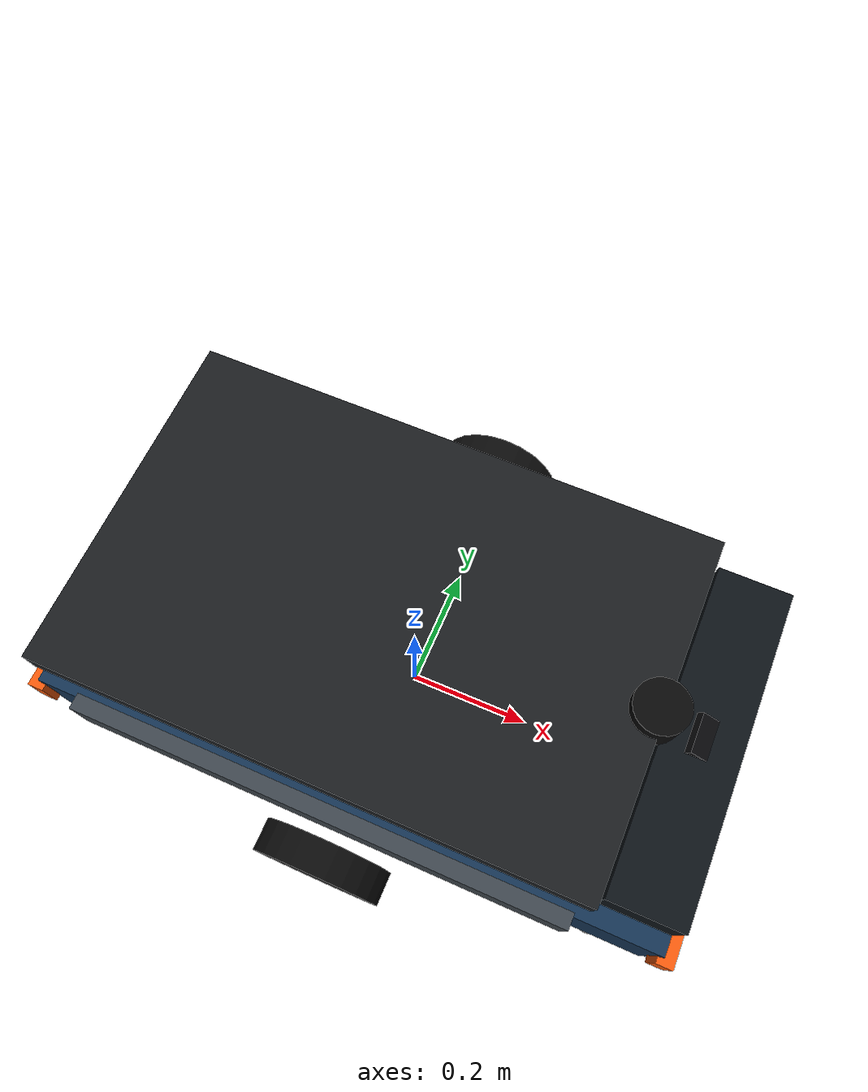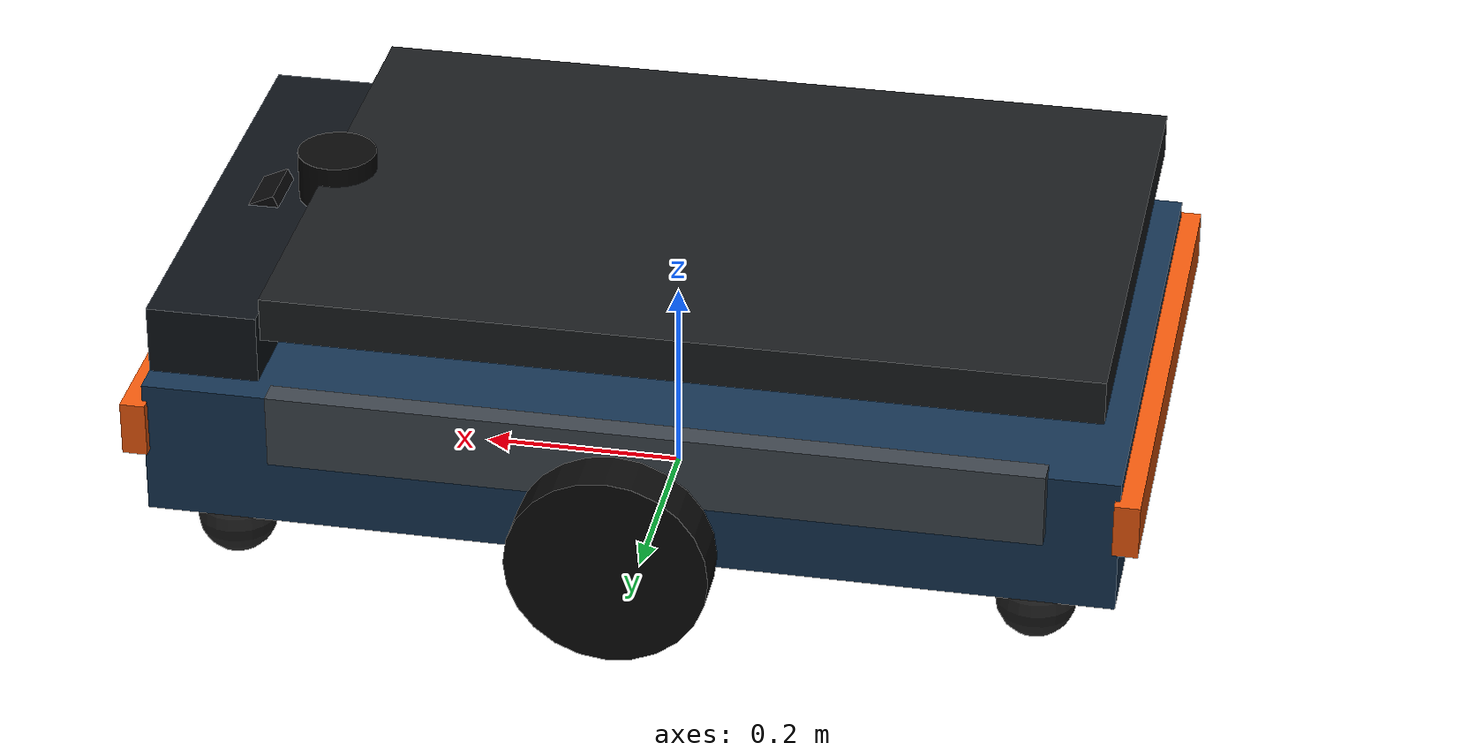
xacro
<?xml version="1.0"?>

<robot name="warehouse_amr"
       xmlns:xacro="http://www.ros.org/wiki/xacro">

    <xacro:include filename="amr_properties.xacro"/>

    <!-- Coordinate convention                                     -->
    <!-- x = forward, y = left, z = up                             -->

    <xacro:arg name="use_sim" default="false"/>
    <xacro:arg name="controllers_file" default=""/>

    <!-- BASE FOOTPRINT                                            -->

    <link name="base_footprint"/>

    <!-- MAIN CHASSIS                                              -->
    <!-- IMPORTANT:                                                -->
    <!-- The collision and inertial model intentionally remain     -->
    <!-- equivalent to the previous V0 chassis so the working      -->
    <!-- navigation / drivetrain baseline is not changed by this   -->
    <!-- visual redesign.                                          -->

    <link name="base_link">

        <!-- Lower equipment enclosure -->
        <visual>
            <origin xyz="0 0 ${lower_body_z}" rpy="0 0 0"/>
            <geometry>
                <box size="${lower_body_length} ${lower_body_width} ${lower_body_height}"/>
            </geometry>
            <material name="body_blue">
                <color rgba="0.08 0.20 0.32 1.0"/>
            </material>
        </visual>

        <!-- Raised payload deck -->
        <visual>
            <origin xyz="${deck_x} 0 ${deck_z}" rpy="0 0 0"/>
            <geometry>
                <box size="${deck_length} ${deck_width} ${deck_height}"/>
            </geometry>
            <material name="deck_dark">
                <color rgba="0.10 0.11 0.12 1.0"/>
            </material>
        </visual>

        <!-- Front sensor nose -->
        <visual>
            <origin xyz="${sensor_nose_x} 0 ${sensor_nose_z}" rpy="0 0 0"/>
            <geometry>
                <box size="${sensor_nose_length} ${sensor_nose_width} ${sensor_nose_height}"/>
            </geometry>
            <material name="sensor_nose_dark">
                <color rgba="0.05 0.07 0.09 1.0"/>
            </material>
        </visual>

        <!-- Left side protection rail / fairing -->
        <visual>
            <origin xyz="-0.03 ${side_rail_y} ${side_rail_z}" rpy="0 0 0"/>
            <geometry>
                <box size="${side_rail_length} ${side_rail_width} ${side_rail_height}"/>
            </geometry>
            <material name="side_rail_gray">
                <color rgba="0.24 0.27 0.30 1.0"/>
            </material>
        </visual>

        <!-- Right side protection rail / fairing -->
        <visual>
            <origin xyz="-0.03 ${-side_rail_y} ${side_rail_z}" rpy="0 0 0"/>
            <geometry>
                <box size="${side_rail_length} ${side_rail_width} ${side_rail_height}"/>
            </geometry>
            <material name="side_rail_gray"/>
        </visual>

        <!-- Front safety bumper -->
        <visual>
            <origin xyz="${front_bumper_x} 0 ${bumper_z}" rpy="0 0 0"/>
            <geometry>
                <box size="${bumper_length} ${bumper_width} ${bumper_height}"/>
            </geometry>
            <material name="safety_orange">
                <color rgba="0.95 0.35 0.05 1.0"/>
            </material>
        </visual>

        <!-- Rear safety bumper -->
        <visual>
            <origin xyz="${-front_bumper_x} 0 ${bumper_z}" rpy="0 0 0"/>
            <geometry>
                <box size="${bumper_length} ${bumper_width} ${bumper_height}"/>
            </geometry>
            <material name="safety_orange"/>
        </visual>

        <!-- Existing conservative collision envelope -->
        <collision>
            <geometry>
                <box size="${base_length} ${base_width} ${base_height}"/>
            </geometry>
        </collision>

        <inertial>
            <mass value="${base_mass}"/>

            <!-- Temporary box inertia approximation retained from V0 -->
            <inertia
                ixx="${base_mass * (base_width*base_width + base_height*base_height) / 12.0}"
                iyy="${base_mass * (base_length*base_length + base_height*base_height) / 12.0}"
                izz="${base_mass * (base_length*base_length + base_width*base_width) / 12.0}"
                ixy="0.0"
                ixz="0.0"
                iyz="0.0"/>
        </inertial>

    </link>

    <joint name="base_footprint_joint" type="fixed">

        <parent link="base_footprint"/>
        <child link="base_link"/>

        <origin
            xyz="0 0 ${ground_clearance + base_height/2.0}"
            rpy="0 0 0"/>

    </joint>

    <!-- LEFT DRIVE WHEEL                                         -->

    <link name="left_wheel_link">

        <visual>
            <origin rpy="${pi/2} 0 0"/>
            <geometry>
                <cylinder radius="${wheel_radius}" length="${wheel_width}"/>
            </geometry>
            <material name="wheel_black">
                <color rgba="0.04 0.04 0.04 1.0"/>
            </material>
        </visual>

        <collision>
            <origin rpy="${pi/2} 0 0"/>
            <geometry>
                <cylinder radius="${wheel_radius}" length="${wheel_width}"/>
            </geometry>
        </collision>

        <inertial>
            <mass value="${wheel_mass}"/>
            <inertia
                ixx="${wheel_mass * (3.0*wheel_radius*wheel_radius + wheel_width*wheel_width) / 12.0}"
                iyy="${wheel_mass * wheel_radius*wheel_radius / 2.0}"
                izz="${wheel_mass * (3.0*wheel_radius*wheel_radius + wheel_width*wheel_width) / 12.0}"
                ixy="0.0"
                ixz="0.0"
                iyz="0.0"/>
        </inertial>

    </link>

    <joint name="left_wheel_joint" type="continuous">

        <parent link="base_link"/>
        <child link="left_wheel_link"/>

        <origin
            xyz="0 ${wheel_separation/2.0} ${wheel_radius - (ground_clearance + base_height/2.0)}"
            rpy="0 0 0"/>

        <axis xyz="0 1 0"/>

    </joint>

    <!-- RIGHT DRIVE WHEEL                                        -->

    <link name="right_wheel_link">

        <visual>
            <origin rpy="${pi/2} 0 0"/>
            <geometry>
                <cylinder radius="${wheel_radius}" length="${wheel_width}"/>
            </geometry>
            <material name="wheel_black"/>
        </visual>

        <collision>
            <origin rpy="${pi/2} 0 0"/>
            <geometry>
                <cylinder radius="${wheel_radius}" length="${wheel_width}"/>
            </geometry>
        </collision>

        <inertial>
            <mass value="${wheel_mass}"/>
            <inertia
                ixx="${wheel_mass * (3.0*wheel_radius*wheel_radius + wheel_width*wheel_width) / 12.0}"
                iyy="${wheel_mass * wheel_radius*wheel_radius / 2.0}"
                izz="${wheel_mass * (3.0*wheel_radius*wheel_radius + wheel_width*wheel_width) / 12.0}"
                ixy="0.0"
                ixz="0.0"
                iyz="0.0"/>
        </inertial>

    </link>

    <joint name="right_wheel_joint" type="continuous">

        <parent link="base_link"/>
        <child link="right_wheel_link"/>

        <origin
            xyz="0 ${-wheel_separation/2.0} ${wheel_radius - (ground_clearance + base_height/2.0)}"
            rpy="0 0 0"/>

        <axis xyz="0 1 0"/>

    </joint>

    <!-- PASSIVE SUPPORT WHEELS                                   -->

    <xacro:macro name="support_wheel" params="name x y">

        <link name="${name}_link">

            <visual>
                <geometry>
                    <sphere radius="${caster_radius}"/>
                </geometry>
                <material name="caster_dark">
                    <color rgba="0.12 0.12 0.12 1.0"/>
                </material>
            </visual>

            <collision>
                <geometry>
                    <sphere radius="${caster_radius}"/>
                </geometry>
            </collision>

            <inertial>
                <mass value="${caster_mass}"/>
                <inertia
                    ixx="${2.0/5.0 * caster_mass * caster_radius*caster_radius}"
                    iyy="${2.0/5.0 * caster_mass * caster_radius*caster_radius}"
                    izz="${2.0/5.0 * caster_mass * caster_radius*caster_radius}"
                    ixy="0.0"
                    ixz="0.0"
                    iyz="0.0"/>
            </inertial>

        </link>

        <joint name="${name}_joint" type="fixed">

            <parent link="base_link"/>
            <child link="${name}_link"/>

            <origin
                xyz="${x} ${y} ${caster_radius - (ground_clearance + base_height/2.0)}"
                rpy="0 0 0"/>

        </joint>

    </xacro:macro>

    <xacro:support_wheel
        name="front_left_support"
        x="${caster_x}"
        y="${caster_y}"/>

    <xacro:support_wheel
        name="front_right_support"
        x="${caster_x}"
        y="${-caster_y}"/>

    <xacro:support_wheel
        name="rear_left_support"
        x="${-caster_x}"
        y="${caster_y}"/>

    <xacro:support_wheel
        name="rear_right_support"
        x="${-caster_x}"
        y="${-caster_y}"/>

    <!-- Simplified low-friction support contacts retained from V0 -->

    <gazebo reference="front_left_support_link">
        <mu1>0.01</mu1>
        <mu2>0.01</mu2>
    </gazebo>

    <gazebo reference="front_right_support_link">
        <mu1>0.01</mu1>
        <mu2>0.01</mu2>
    </gazebo>

    <gazebo reference="rear_left_support_link">
        <mu1>0.01</mu1>
        <mu2>0.01</mu2>
    </gazebo>

    <gazebo reference="rear_right_support_link">
        <mu1>0.01</mu1>
        <mu2>0.01</mu2>
    </gazebo>

    <!-- IMU FRAME                                                -->

    <link name="imu_link"/>

    <joint name="imu_joint" type="fixed">
        <parent link="base_link"/>
        <child link="imu_link"/>
        <origin xyz="0 0 0.05" rpy="0 0 0"/>
    </joint>

    <!-- LIDAR + PEDESTAL                                         -->
    <!-- TF location is intentionally unchanged from V0.           -->

    <link name="lidar_link">

        <!-- Pedestal -->
        <visual>
            <origin xyz="0 0 -0.065" rpy="0 0 0"/>
            <geometry>
                <cylinder radius="0.025" length="0.08"/>
            </geometry>
            <material name="lidar_pedestal">
                <color rgba="0.18 0.20 0.22 1.0"/>
            </material>
        </visual>

        <!-- LiDAR puck -->
        <visual>
            <geometry>
                <cylinder radius="0.040" length="0.05"/>
            </geometry>
            <material name="lidar_dark">
                <color rgba="0.03 0.03 0.03 1.0"/>
            </material>
        </visual>

    </link>

    <joint name="lidar_joint" type="fixed">
        <parent link="base_link"/>
        <child link="lidar_link"/>

        <!-- Existing verified transform retained -->
        <origin
            xyz="0.35 0 ${base_height/2.0 + 0.04}"
            rpy="0 0 0"/>
    </joint>

    <!-- DOCKING CAMERA                                           -->
    <!-- Reference hardware envelope:                              -->
    <!-- Raspberry Pi Global Shutter Camera (IMX296) + C/CS lens. -->
    <!-- Optical center is ~0.24 m above the floor and the camera  -->
    <!-- is pitched 25 degrees downward for floor fiducials.       -->

    <link name="camera_mount_link">

        <!-- Protective camera housing -->
        <visual>
            <geometry>
                <box size="${camera_housing_length} ${camera_housing_width} ${camera_housing_height}"/>
            </geometry>
            <material name="camera_housing_black">
                <color rgba="0.035 0.035 0.04 1.0"/>
            </material>
        </visual>

        <!-- Front lens barrel, approximate only -->
        <visual>
            <origin xyz="${camera_housing_length/2.0 + 0.012} 0 0" rpy="0 ${pi/2.0} 0"/>
            <geometry>
                <cylinder radius="0.018" length="0.024"/>
            </geometry>
            <material name="camera_lens">
                <color rgba="0.02 0.02 0.025 1.0"/>
            </material>
        </visual>

    </link>

    <joint name="camera_mount_joint" type="fixed">

        <parent link="base_link"/>
        <child link="camera_mount_link"/>

        <origin
            xyz="${camera_x} ${camera_y} ${camera_z}"
            rpy="0 ${camera_pitch} 0"/>

    </joint>

    <!-- Conventional robot camera frame: x forward, y left, z up -->
    <link name="camera_link"/>

    <joint name="camera_joint" type="fixed">

        <parent link="camera_mount_link"/>
        <child link="camera_link"/>

        <!-- Approximate optical center near the front of the housing -->
        <origin
            xyz="${camera_housing_length/2.0} 0 0"
            rpy="0 0 0"/>

    </joint>

    <!-- REP-103 optical frame: x right, y down, z forward -->
    <link name="camera_optical_frame"/>

    <joint name="camera_optical_joint" type="fixed">

        <parent link="camera_link"/>
        <child link="camera_optical_frame"/>

        <origin
            xyz="0 0 0"
            rpy="${-pi/2.0} 0 ${-pi/2.0}"/>

    </joint>

    <!-- SIMULATION-ONLY COMPONENTS                               -->

    <xacro:if value="$(arg use_sim)">

        <!-- ros2_control Gazebo hardware                         -->

        <ros2_control name="GazeboSimSystem" type="system">

            <hardware>
                <plugin>gz_ros2_control/GazeboSimSystem</plugin>
            </hardware>

            <joint name="left_wheel_joint">

                <command_interface name="velocity">
                    <param name="min">-12.0</param>
                    <param name="max">12.0</param>
                </command_interface>

                <state_interface name="position"/>
                <state_interface name="velocity"/>

            </joint>

            <joint name="right_wheel_joint">

                <command_interface name="velocity">
                    <param name="min">-12.0</param>
                    <param name="max">12.0</param>
                </command_interface>

                <state_interface name="position"/>
                <state_interface name="velocity"/>

            </joint>

        </ros2_control>

        <!-- gz_ros2_control plugin                               -->

        <gazebo>

            <plugin
                filename="libgz_ros2_control-system.so"
                name="gz_ros2_control::GazeboSimROS2ControlPlugin">

                <parameters>$(arg controllers_file)</parameters>

            </plugin>

        </gazebo>

        <!-- IMU                                                  -->

        <gazebo reference="imu_link">

            <sensor name="imu_sensor" type="imu">

                <always_on>true</always_on>
                <update_rate>100</update_rate>

                <topic>/imu/data_raw</topic>
                <gz_frame_id>imu_link</gz_frame_id>

            </sensor>

        </gazebo>

        <!-- 2D GPU LIDAR                                         -->

        <gazebo reference="lidar_link">

            <sensor name="lidar_sensor" type="gpu_lidar">

                <always_on>true</always_on>
                <visualize>true</visualize>
                <update_rate>10</update_rate>

                <topic>/scan</topic>
                <gz_frame_id>lidar_link</gz_frame_id>

                <lidar>

                    <scan>
                        <horizontal>

                            <samples>720</samples>
                            <resolution>1</resolution>

                            <min_angle>-3.14159265</min_angle>
                            <max_angle>3.14159265</max_angle>

                        </horizontal>
                    </scan>

                    <range>
                        <min>0.05</min>
                        <max>20.0</max>
                        <resolution>0.01</resolution>
                    </range>

                </lidar>

            </sensor>

        </gazebo>

        <!-- DOCKING CAMERA                                       -->
        <!-- Approximate Raspberry Pi Global Shutter Camera       -->
        <!-- geometry with provisional 6 mm lens (~45.4 deg HFOV).-->
        <!-- A ros_gz_bridge image + camera_info bridge will be   -->
        <!-- added when AprilTag simulation is introduced.        -->

        <gazebo reference="camera_link">

            <sensor name="docking_camera_sensor" type="camera">

                <always_on>false</always_on>
                <visualize>false</visualize>
                <update_rate>10</update_rate>

                <topic>/camera/image_raw</topic>

                <gz_frame_id>camera_optical_frame</gz_frame_id>

                <camera>
                    <horizontal_fov>0.7924</horizontal_fov>

                    <camera_info_topic>/camera/camera_info</camera_info_topic>

                    <image>
                        <width>640</width>
                        <height>480</height>
                        <format>R8G8B8</format>
                    </image>

                    <clip>
                        <near>0.05</near>
                        <far>8.0</far>
                    </clip>
                </camera>

            </sensor>

        </gazebo>

    </xacro:if>

</robot>

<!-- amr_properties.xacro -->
<robot xmlns:xacro="http://www.ros.org/wiki/xacro">

    <!-- AMR V1.1 PARAMETERS                                      -->
    <!-- The drive geometry / mass values are intentionally kept   -->
    <!-- from the working V0 model. New values below primarily     -->
    <!-- define the upgraded visual body and docking-camera bay.    -->
    <!-- All dimensions are SI units: m, kg.                       -->

    <!-- EXISTING VEHICLE ENVELOPE / DYNAMICS                      -->

    <xacro:property name="base_length" value="1.00"/>
    <xacro:property name="base_width"  value="0.60"/>
    <xacro:property name="base_height" value="0.20"/>

    <!-- Approximate base mass, without payload -->
    <xacro:property name="base_mass" value="50.0"/>

    <!-- Ground clearance under the chassis -->
    <xacro:property name="ground_clearance" value="0.06"/>

    <!-- Drive wheels -->
    <xacro:property name="wheel_radius"     value="0.10"/>
    <xacro:property name="wheel_width"     value="0.05"/>
    <xacro:property name="wheel_clearance" value="0.02"/>

    <!-- Distance between left and right wheel centerlines -->
    <xacro:property
        name="wheel_separation"
        value="${base_width + wheel_width + 2.0*wheel_clearance}"/>

    <!-- Passive support wheels / caster placeholders -->
    <xacro:property name="caster_radius" value="0.04"/>
    <xacro:property name="caster_x" value="0.40"/>
    <xacro:property name="caster_y" value="0.24"/>

    <xacro:property name="wheel_mass" value="2.0"/>
    <xacro:property name="caster_mass" value="0.5"/>

    <!-- V1.1 INDUSTRIAL BODY VISUALS                              -->

    <!-- Lower equipment enclosure -->
    <xacro:property name="lower_body_length" value="0.96"/>
    <xacro:property name="lower_body_width"  value="0.56"/>
    <xacro:property name="lower_body_height" value="0.14"/>

    <!-- base_link origin is ~0.16 m above floor.
         This places the lower enclosure bottom near the existing
         0.06 m ground clearance. -->
    <xacro:property name="lower_body_z" value="-0.03"/>

    <!-- Payload deck -->
    <xacro:property name="deck_length" value="0.82"/>
    <xacro:property name="deck_width"  value="0.54"/>
    <xacro:property name="deck_height" value="0.045"/>

    <!-- Deck shifted rearward to preserve front sensor zone -->
    <xacro:property name="deck_x" value="-0.05"/>

    <!-- Existing chassis top is at ~0.26 m above floor.
         Deck spans approximately 0.26 -> 0.305 m. -->
    <xacro:property name="deck_z" value="0.1225"/>

    <!-- Front sensor nose -->
    <xacro:property name="sensor_nose_length" value="0.11"/>
    <xacro:property name="sensor_nose_width"  value="0.50"/>
    <xacro:property name="sensor_nose_height" value="0.08"/>
    <xacro:property name="sensor_nose_x" value="0.425"/>
    <xacro:property name="sensor_nose_z" value="0.07"/>

    <!-- Side protection fairings -->
    <xacro:property name="side_rail_length" value="0.76"/>
    <xacro:property name="side_rail_width"  value="0.025"/>
    <xacro:property name="side_rail_height" value="0.075"/>
    <xacro:property name="side_rail_y" value="0.2875"/>
    <xacro:property name="side_rail_z" value="0.015"/>

    <!-- Front/rear bumper visuals -->
    <xacro:property name="bumper_length" value="0.025"/>
    <xacro:property name="bumper_width"  value="0.58"/>
    <xacro:property name="bumper_height" value="0.055"/>
    <xacro:property name="front_bumper_x" value="0.4875"/>
    <xacro:property name="bumper_z" value="-0.005"/>

    <!-- DOCKING CAMERA ENVELOPE                                  -->
    <!-- Reference: Raspberry Pi Global Shutter Camera + lens.     -->
    <!-- Housing is intentionally larger than the 38 x 38 mm PCB   -->
    <!-- to reserve space for lens, bracket and protective window.  -->

    <xacro:property name="camera_housing_length" value="0.070"/>
    <xacro:property name="camera_housing_width"  value="0.060"/>
    <xacro:property name="camera_housing_height" value="0.060"/>

    <!-- Relative to base_link. base_link is ~0.16 m above floor,
         giving an optical center near ~0.24 m above floor. -->
    <xacro:property name="camera_x" value="0.430"/>
    <xacro:property name="camera_y" value="0.000"/>
    <xacro:property name="camera_z" value="0.080"/>

    <!-- 25 degrees downward -->
    <xacro:property
        name="camera_pitch"
        value="${25.0*pi/180.0}"/>

</robot>
